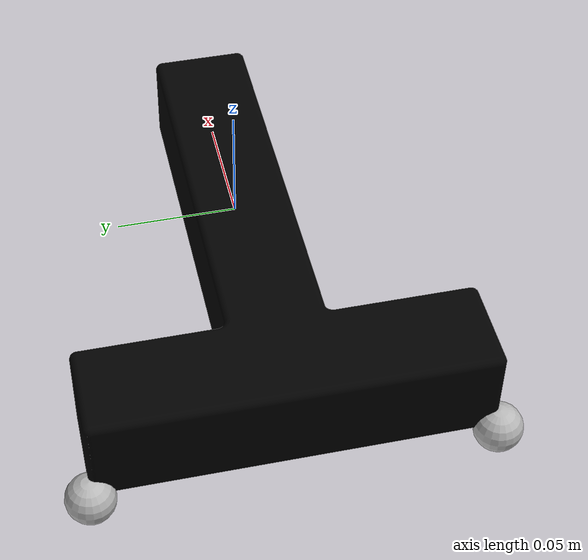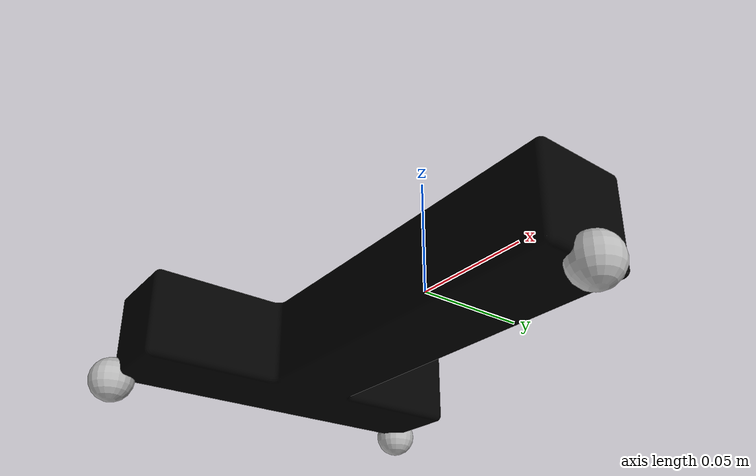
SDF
<?xml version="1.0"?>
<sdf version="1.7">
  <model name="t_shape">
    <link name="vertical_link">
      <inertial>
        <pose>-0.05 0 0 0 0 0</pose>
        <mass>1</mass>
        <!-- Inertia values were calculated to be consistent with the mass and
             geometry size, assuming a uniform density. -->
        <inertia>
            <ixx>1.2666000e-03</ixx>
            <iyy>6.2666000e-03 </iyy>
            <izz>7.2666000e-03 </izz>
            <ixy>3.6732051e-09</ixy>
            <ixz>0.0</ixz>
            <iyz>0.0</iyz>
        </inertia>
      </inertial>

      <visual name="vertical_link">
        <pose>0 0 0 0 0 0</pose>
        <geometry>
          <mesh>
            <uri>push_t_white.obj</uri>
          </mesh>
        </geometry>
        <material>
          <diffuse>0 0 0 1</diffuse>
        </material>
      </visual>
      <collision name="vertical_link_volume">
        <pose>0 0 0 0 0 0</pose>
            <geometry>
          <mesh>
            <uri>push_t_white.obj</uri>
          </mesh>
        </geometry>
        <drake:proximity_properties>
          <drake:compliant_hydroelastic/>
          <drake:hydroelastic_modulus> 3.0e7 </drake:hydroelastic_modulus>
          <drake:mesh_resolution_hint> 0.18 </drake:mesh_resolution_hint>
          <drake:hunt_crossley_dissipation>10</drake:hunt_crossley_dissipation>
          <drake:mu_dynamic>0.3</drake:mu_dynamic>
        </drake:proximity_properties>
      </collision>
      <collision name="corner_nxynz_">
        <geometry>
          <sphere>
            <radius>0.001</radius>
          </sphere>
        </geometry>
        <drake:proximity_properties>
        <drake:mu_dynamic>0.3</drake:mu_dynamic>
        </drake:proximity_properties>
        <pose> -0.12 0.08 -0.02 0 0 0</pose>
      </collision>
      <visual name="corner_nxynz_">
        <geometry>
          <sphere>
            <radius>0.01</radius>
          </sphere>
        </geometry>
        <pose> -0.12 0.08 -0.02 0 0 0</pose>
      </visual>
      <collision name="corner_nxnynz">
        <geometry>
          <sphere>
            <radius>0.001</radius>
          </sphere>
        </geometry>
        <drake:proximity_properties>
        <drake:mu_dynamic>0.3</drake:mu_dynamic>
        </drake:proximity_properties>
        <pose> -0.12 -0.08 -0.02 0 0 0</pose>
      </collision>
      <visual name="corner_nxnynz">
        <geometry>
          <sphere>
            <radius>0.01</radius>
          </sphere>
        </geometry>
        <pose> -0.12 -0.08 -0.02 0 0 0</pose>
      </visual>
      <collision name="corner_xynz">
        <geometry>
          <sphere>
            <radius>0.001</radius>
          </sphere>
        </geometry>
        <drake:proximity_properties>
        <drake:mu_dynamic>0.3</drake:mu_dynamic>
        </drake:proximity_properties>
        <pose> 0.08 0.0 -0.02 0 0 0</pose>
      </collision>
      <visual name="corner_xynz">
        <geometry>
          <sphere>
            <radius>0.01</radius>
          </sphere>
        </geometry>
        <pose> 0.08 0.0 -0.02 0 0 0</pose>
      </visual>
    </link>
  </model>
</sdf>
